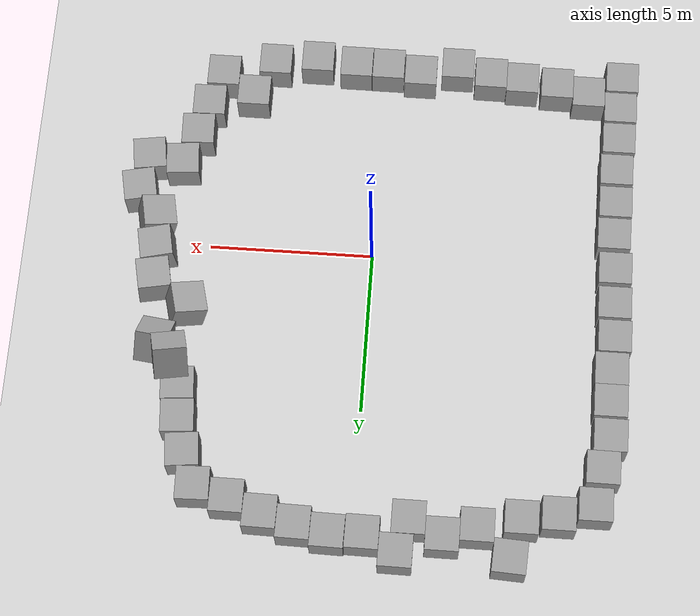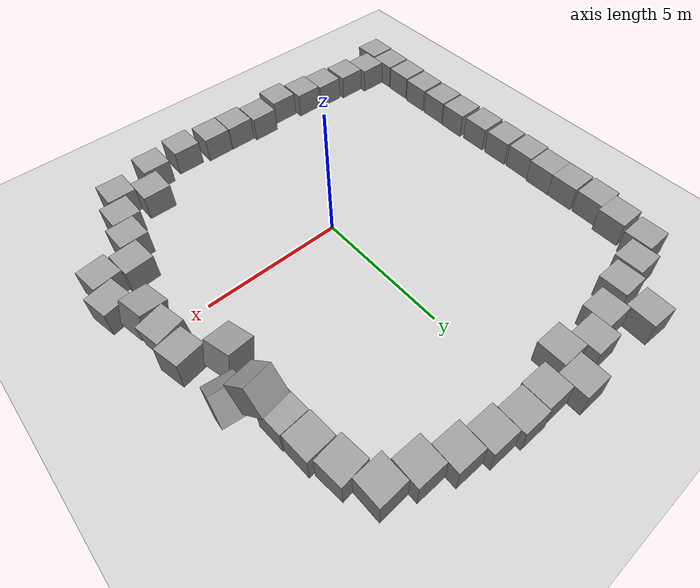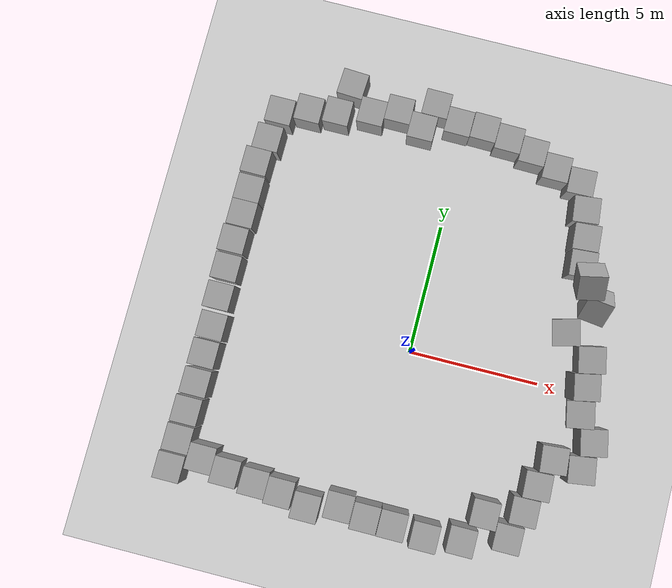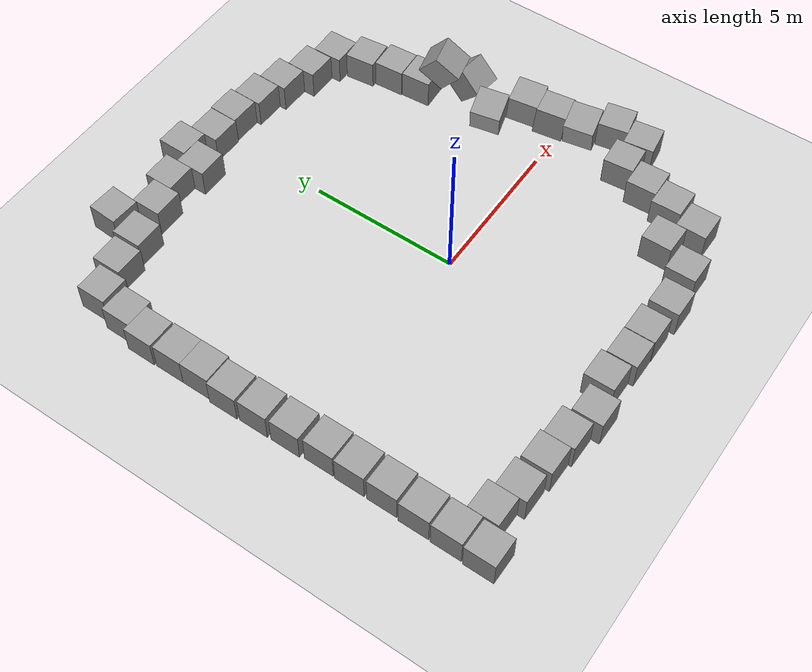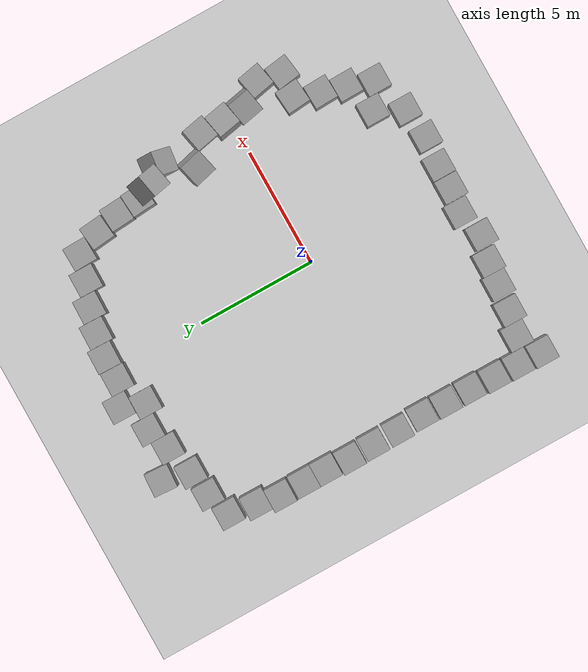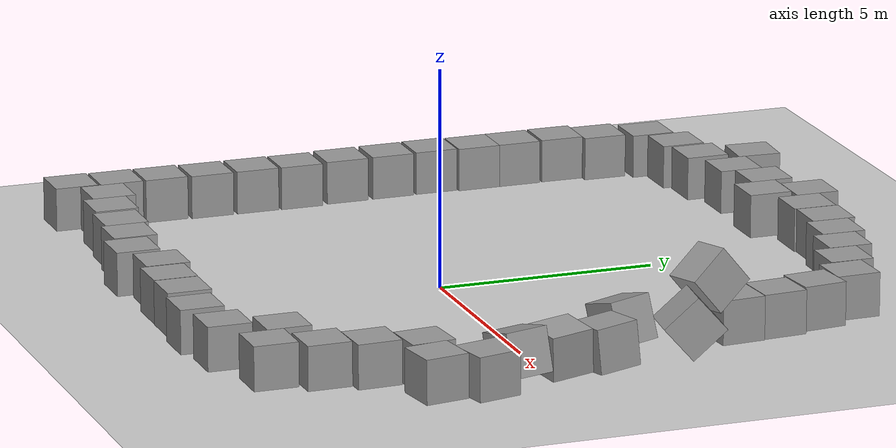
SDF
<sdf version="1.6">
 <world name="default">
  <model name="ground_plane">
   <static>1</static>
   <link name="link">
    <collision name="collision">
     <geometry><plane><normal>0 0 1</normal><size>100 100</size></plane></geometry>
     <surface><friction><ode><mu>100</mu><mu2>50</mu2></ode></friction></surface>
    </collision>
    <visual name="visual">
     <cast_shadows>0</cast_shadows>
     <geometry><plane><normal>0 0 1</normal><size>100 100</size></plane></geometry>
     <material>
      <script><uri>file://media/materials/scripts/gazebo.material</uri><name>Gazebo/Grey</name></script>
     </material>
    </visual>
   </link>
  </model>
  <light name="sun" type="directional">
   <pose>0 0 10 0 -0 0</pose>
   <diffuse>0.8 0.8 0.8 1</diffuse>
   <specular>0.1 0.1 0.1 1</specular>
   <attenuation>
    <range>1000</range>
    <constant>0.9</constant>
    <linear>0.01</linear>
    <quadratic>0.001</quadratic>
   </attenuation>
   <direction>-0.5 0.5 -1</direction>
  </light>
  <gravity>0 0 -9.8</gravity>
  <magnetic_field>6e-06 2.3e-05 -4.2e-05</magnetic_field>
  <atmosphere type="adiabatic"/>
  <physics name="default_physics" default="0" type="ode">
   <max_step_size>0.001</max_step_size>
   <real_time_factor>1</real_time_factor>
   <real_time_update_rate>1000</real_time_update_rate>
  </physics>
  <scene><ambient>0.4 0.4 0.4 1</ambient><background>0.7 0.7 0.7 1</background><shadows>1</shadows></scene>
  <spherical_coordinates>
   <surface_model>EARTH_WGS84</surface_model>
   <latitude_deg>0</latitude_deg>
   <longitude_deg>0</longitude_deg>
   <elevation>0</elevation>
   <heading_deg>0</heading_deg>
  </spherical_coordinates>
  <model name="unit_box_0">
   <pose>-7.47389 -5.17972 0.499995 0 1e-05 0</pose>
   <link name="link">
    <inertial>
     <mass>1</mass>
     <inertia>
      <ixx>0.166667</ixx>
      <ixy>0</ixy>
      <ixz>0</ixz>
      <iyy>0.166667</iyy>
      <iyz>0</iyz>
      <izz>0.166667</izz>
     </inertia>
    </inertial>
    <collision name="collision"><geometry><box><size>1 1 1</size></box></geometry></collision>
    <visual name="visual">
     <geometry><box><size>1 1 1</size></box></geometry>
     <material>
      <script><name>Gazebo/Grey</name><uri>file://media/materials/scripts/gazebo.material</uri></script>
     </material>
    </visual>
   </link>
  </model>
  <model name="unit_box_0_clone">
   <pose>-7.45343 -4.11871 0.499995 -1e-05 0 0</pose>
   <link name="link">
    <inertial>
     <mass>1</mass>
     <inertia>
      <ixx>0.166667</ixx>
      <ixy>0</ixy>
      <ixz>0</ixz>
      <iyy>0.166667</iyy>
      <iyz>0</iyz>
      <izz>0.166667</izz>
     </inertia>
    </inertial>
    <collision name="collision"><geometry><box><size>1 1 1</size></box></geometry></collision>
    <visual name="visual">
     <geometry><box><size>1 1 1</size></box></geometry>
     <material>
      <script><name>Gazebo/Grey</name><uri>file://media/materials/scripts/gazebo.material</uri></script>
     </material>
    </visual>
   </link>
  </model>
  <model name="unit_box_0_clone_0">
   <pose>-7.40433 -3.03981 0.499995 0 1e-05 0</pose>
   <link name="link">
    <inertial>
     <mass>1</mass>
     <inertia>
      <ixx>0.166667</ixx>
      <ixy>0</ixy>
      <ixz>0</ixz>
      <iyy>0.166667</iyy>
      <iyz>0</iyz>
      <izz>0.166667</izz>
     </inertia>
    </inertial>
    <collision name="collision"><geometry><box><size>1 1 1</size></box></geometry></collision>
    <visual name="visual">
     <geometry><box><size>1 1 1</size></box></geometry>
     <material>
      <script><name>Gazebo/Grey</name><uri>file://media/materials/scripts/gazebo.material</uri></script>
     </material>
    </visual>
   </link>
  </model>
  <model name="unit_box_0_clone_1">
   <pose>-7.40096 -1.94934 0.499995 -1e-05 0 0</pose>
   <link name="link">
    <inertial>
     <mass>1</mass>
     <inertia>
      <ixx>0.166667</ixx>
      <ixy>0</ixy>
      <ixz>0</ixz>
      <iyy>0.166667</iyy>
      <iyz>0</iyz>
      <izz>0.166667</izz>
     </inertia>
    </inertial>
    <collision name="collision"><geometry><box><size>1 1 1</size></box></geometry></collision>
    <visual name="visual">
     <geometry><box><size>1 1 1</size></box></geometry>
     <material>
      <script><name>Gazebo/Grey</name><uri>file://media/materials/scripts/gazebo.material</uri></script>
     </material>
    </visual>
   </link>
  </model>
  <model name="unit_box_0_clone_2">
   <pose>-7.38025 -0.888456 0.499995 0 1e-05 0</pose>
   <link name="link">
    <inertial>
     <mass>1</mass>
     <inertia>
      <ixx>0.166667</ixx>
      <ixy>0</ixy>
      <ixz>0</ixz>
      <iyy>0.166667</iyy>
      <iyz>0</iyz>
      <izz>0.166667</izz>
     </inertia>
    </inertial>
    <collision name="collision"><geometry><box><size>1 1 1</size></box></geometry></collision>
    <visual name="visual">
     <geometry><box><size>1 1 1</size></box></geometry>
     <material>
      <script><name>Gazebo/Grey</name><uri>file://media/materials/scripts/gazebo.material</uri></script>
     </material>
    </visual>
   </link>
  </model>
  <model name="unit_box_0_clone_3">
   <pose>-7.43985 0.241353 0.499995 -1e-05 0 0</pose>
   <link name="link">
    <inertial>
     <mass>1</mass>
     <inertia>
      <ixx>0.166667</ixx>
      <ixy>0</ixy>
      <ixz>0</ixz>
      <iyy>0.166667</iyy>
      <iyz>0</iyz>
      <izz>0.166667</izz>
     </inertia>
    </inertial>
    <collision name="collision"><geometry><box><size>1 1 1</size></box></geometry></collision>
    <visual name="visual">
     <geometry><box><size>1 1 1</size></box></geometry>
     <material>
      <script><name>Gazebo/Grey</name><uri>file://media/materials/scripts/gazebo.material</uri></script>
     </material>
    </visual>
   </link>
  </model>
  <model name="unit_box_0_clone_4">
   <pose>-7.4536 1.35908 0.5 0 -0 0</pose>
   <link name="link">
    <inertial>
     <mass>1</mass>
     <inertia>
      <ixx>0.166667</ixx>
      <ixy>0</ixy>
      <ixz>0</ixz>
      <iyy>0.166667</iyy>
      <iyz>0</iyz>
      <izz>0.166667</izz>
     </inertia>
    </inertial>
    <collision name="collision"><geometry><box><size>1 1 1</size></box></geometry></collision>
    <visual name="visual">
     <geometry><box><size>1 1 1</size></box></geometry>
     <material>
      <script><name>Gazebo/Grey</name><uri>file://media/materials/scripts/gazebo.material</uri></script>
     </material>
    </visual>
   </link>
  </model>
  <model name="unit_box_0_clone_5">
   <pose>-7.47888 2.43163 0.5 0 -0 0</pose>
   <link name="link">
    <inertial>
     <mass>1</mass>
     <inertia>
      <ixx>0.166667</ixx>
      <ixy>0</ixy>
      <ixz>0</ixz>
      <iyy>0.166667</iyy>
      <iyz>0</iyz>
      <izz>0.166667</izz>
     </inertia>
    </inertial>
    <collision name="collision"><geometry><box><size>1 1 1</size></box></geometry></collision>
    <visual name="visual">
     <geometry><box><size>1 1 1</size></box></geometry>
     <material>
      <script><name>Gazebo/Grey</name><uri>file://media/materials/scripts/gazebo.material</uri></script>
     </material>
    </visual>
   </link>
  </model>
  <model name="unit_box_0_clone_6">
   <pose>-7.41253 3.46648 0.5 0 -0 2.4e-05</pose>
   <link name="link">
    <inertial>
     <mass>1</mass>
     <inertia>
      <ixx>0.166667</ixx>
      <ixy>0</ixy>
      <ixz>0</ixz>
      <iyy>0.166667</iyy>
      <iyz>0</iyz>
      <izz>0.166667</izz>
     </inertia>
    </inertial>
    <collision name="collision"><geometry><box><size>1 1 1</size></box></geometry></collision>
    <visual name="visual">
     <geometry><box><size>1 1 1</size></box></geometry>
     <material>
      <script><name>Gazebo/Grey</name><uri>file://media/materials/scripts/gazebo.material</uri></script>
     </material>
    </visual>
   </link>
  </model>
  <model name="unit_box_0_clone_7">
   <pose>-7.41454 4.46649 0.499995 -1e-05 -0 2.3e-05</pose>
   <link name="link">
    <inertial>
     <mass>1</mass>
     <inertia>
      <ixx>0.166667</ixx>
      <ixy>0</ixy>
      <ixz>0</ixz>
      <iyy>0.166667</iyy>
      <iyz>0</iyz>
      <izz>0.166667</izz>
     </inertia>
    </inertial>
    <collision name="collision"><geometry><box><size>1 1 1</size></box></geometry></collision>
    <visual name="visual">
     <geometry><box><size>1 1 1</size></box></geometry>
     <material>
      <script><name>Gazebo/Grey</name><uri>file://media/materials/scripts/gazebo.material</uri></script>
     </material>
    </visual>
   </link>
  </model>
  <model name="unit_box_0_clone_8">
   <pose>-7.43231 5.5327 0.5 0 0 -0.008708</pose>
   <link name="link">
    <inertial>
     <mass>1</mass>
     <inertia>
      <ixx>0.166667</ixx>
      <ixy>0</ixy>
      <ixz>0</ixz>
      <iyy>0.166667</iyy>
      <iyz>0</iyz>
      <izz>0.166667</izz>
     </inertia>
    </inertial>
    <collision name="collision"><geometry><box><size>1 1 1</size></box></geometry></collision>
    <visual name="visual">
     <geometry><box><size>1 1 1</size></box></geometry>
     <material>
      <script><name>Gazebo/Grey</name><uri>file://media/materials/scripts/gazebo.material</uri></script>
     </material>
    </visual>
   </link>
  </model>
  <model name="unit_box_0_clone_9">
   <pose>-7.24379 6.53113 0.5 0 0 -0.008701</pose>
   <link name="link">
    <inertial>
     <mass>1</mass>
     <inertia>
      <ixx>0.166667</ixx>
      <ixy>0</ixy>
      <ixz>0</ixz>
      <iyy>0.166667</iyy>
      <iyz>0</iyz>
      <izz>0.166667</izz>
     </inertia>
    </inertial>
    <collision name="collision"><geometry><box><size>1 1 1</size></box></geometry></collision>
    <visual name="visual">
     <geometry><box><size>1 1 1</size></box></geometry>
     <material>
      <script><name>Gazebo/Grey</name><uri>file://media/materials/scripts/gazebo.material</uri></script>
     </material>
    </visual>
   </link>
  </model>
  <model name="unit_box_0_clone_10">
   <pose>-7.05641 7.65805 0.5 0 -0 0</pose>
   <link name="link">
    <inertial>
     <mass>1</mass>
     <inertia>
      <ixx>0.166667</ixx>
      <ixy>0</ixy>
      <ixz>0</ixz>
      <iyy>0.166667</iyy>
      <iyz>0</iyz>
      <izz>0.166667</izz>
     </inertia>
    </inertial>
    <collision name="collision"><geometry><box><size>1 1 1</size></box></geometry></collision>
    <visual name="visual">
     <geometry><box><size>1 1 1</size></box></geometry>
     <material>
      <script><name>Gazebo/Grey</name><uri>file://media/materials/scripts/gazebo.material</uri></script>
     </material>
    </visual>
   </link>
  </model>
  <model name="unit_box_0_clone_11">
   <pose>-6 8 0.5 0 -0 0</pose>
   <link name="link">
    <inertial>
     <mass>1</mass>
     <inertia>
      <ixx>0.166667</ixx>
      <ixy>0</ixy>
      <ixz>0</ixz>
      <iyy>0.166667</iyy>
      <iyz>0</iyz>
      <izz>0.166667</izz>
     </inertia>
    </inertial>
    <collision name="collision"><geometry><box><size>1 1 1</size></box></geometry></collision>
    <visual name="visual">
     <geometry><box><size>1 1 1</size></box></geometry>
     <material>
      <script><name>Gazebo/Grey</name><uri>file://media/materials/scripts/gazebo.material</uri></script>
     </material>
    </visual>
   </link>
  </model>
  <model name="unit_box_0_clone_12">
   <pose>-4.91824 8.1706 0.5 0 -0 0</pose>
   <link name="link">
    <inertial>
     <mass>1</mass>
     <inertia>
      <ixx>0.166667</ixx>
      <ixy>0</ixy>
      <ixz>0</ixz>
      <iyy>0.166667</iyy>
      <iyz>0</iyz>
      <izz>0.166667</izz>
     </inertia>
    </inertial>
    <collision name="collision"><geometry><box><size>1 1 1</size></box></geometry></collision>
    <visual name="visual">
     <geometry><box><size>1 1 1</size></box></geometry>
     <material>
      <script><name>Gazebo/Grey</name><uri>file://media/materials/scripts/gazebo.material</uri></script>
     </material>
    </visual>
   </link>
  </model>
  <model name="unit_box_0_clone_13">
   <pose>-3.64528 8.48185 0.49999 0 0 -0.003197</pose>
   <link name="link">
    <inertial>
     <mass>1</mass>
     <inertia>
      <ixx>0.166667</ixx>
      <ixy>0</ixy>
      <ixz>0</ixz>
      <iyy>0.166667</iyy>
      <iyz>0</iyz>
      <izz>0.166667</izz>
     </inertia>
    </inertial>
    <collision name="collision"><geometry><box><size>1 1 1</size></box></geometry></collision>
    <visual name="visual">
     <geometry><box><size>1 1 1</size></box></geometry>
     <material>
      <script><name>Gazebo/Grey</name><uri>file://media/materials/scripts/gazebo.material</uri></script>
     </material>
    </visual>
   </link>
  </model>
  <model name="unit_box_0_clone_14">
   <pose>-2.64417 8.82151 0.5 0 0 -0.003211</pose>
   <link name="link">
    <inertial>
     <mass>1</mass>
     <inertia>
      <ixx>0.166667</ixx>
      <ixy>0</ixy>
      <ixz>0</ixz>
      <iyy>0.166667</iyy>
      <iyz>0</iyz>
      <izz>0.166667</izz>
     </inertia>
    </inertial>
    <collision name="collision"><geometry><box><size>1 1 1</size></box></geometry></collision>
    <visual name="visual">
     <geometry><box><size>1 1 1</size></box></geometry>
     <material>
      <script><name>Gazebo/Grey</name><uri>file://media/materials/scripts/gazebo.material</uri></script>
     </material>
    </visual>
   </link>
  </model>
  <model name="unit_box_0_clone_15">
   <pose>-4.62326 9.35824 0.5 0 0 -0.056568</pose>
   <link name="link">
    <inertial>
     <mass>1</mass>
     <inertia>
      <ixx>0.166667</ixx>
      <ixy>0</ixy>
      <ixz>0</ixz>
      <iyy>0.166667</iyy>
      <iyz>0</iyz>
      <izz>0.166667</izz>
     </inertia>
    </inertial>
    <collision name="collision"><geometry><box><size>1 1 1</size></box></geometry></collision>
    <visual name="visual">
     <geometry><box><size>1 1 1</size></box></geometry>
     <material>
      <script><name>Gazebo/Grey</name><uri>file://media/materials/scripts/gazebo.material</uri></script>
     </material>
    </visual>
   </link>
  </model>
  <model name="unit_box_0_clone_16">
   <pose>-1.64552 8.38442 0.499995 1e-05 0 -0.003272</pose>
   <link name="link">
    <inertial>
     <mass>1</mass>
     <inertia>
      <ixx>0.166667</ixx>
      <ixy>0</ixy>
      <ixz>0</ixz>
      <iyy>0.166667</iyy>
      <iyz>0</iyz>
      <izz>0.166667</izz>
     </inertia>
    </inertial>
    <collision name="collision"><geometry><box><size>1 1 1</size></box></geometry></collision>
    <visual name="visual">
     <geometry><box><size>1 1 1</size></box></geometry>
     <material>
      <script><name>Gazebo/Grey</name><uri>file://media/materials/scripts/gazebo.material</uri></script>
     </material>
    </visual>
   </link>
  </model>
  <model name="unit_box_1">
   <pose>-7.5127 -6.23461 0.5 0 -0 0</pose>
   <link name="link">
    <inertial>
     <mass>1</mass>
     <inertia>
      <ixx>0.166667</ixx>
      <ixy>0</ixy>
      <ixz>0</ixz>
      <iyy>0.166667</iyy>
      <iyz>0</iyz>
      <izz>0.166667</izz>
     </inertia>
    </inertial>
    <collision name="collision"><geometry><box><size>1 1 1</size></box></geometry></collision>
    <visual name="visual">
     <geometry><box><size>1 1 1</size></box></geometry>
     <material>
      <script><name>Gazebo/Grey</name><uri>file://media/materials/scripts/gazebo.material</uri></script>
     </material>
    </visual>
   </link>
  </model>
  <model name="unit_box_0_clone_17">
   <pose>-6.47221 -5.66918 0.5 0 0 -0.005914</pose>
   <link name="link">
    <inertial>
     <mass>1</mass>
     <inertia>
      <ixx>0.166667</ixx>
      <ixy>0</ixy>
      <ixz>0</ixz>
      <iyy>0.166667</iyy>
      <iyz>0</iyz>
      <izz>0.166667</izz>
     </inertia>
    </inertial>
    <collision name="collision"><geometry><box><size>1 1 1</size></box></geometry></collision>
    <visual name="visual">
     <geometry><box><size>1 1 1</size></box></geometry>
     <material>
      <script><name>Gazebo/Grey</name><uri>file://media/materials/scripts/gazebo.material</uri></script>
     </material>
    </visual>
   </link>
  </model>
  <model name="unit_box_0_clone_18">
   <pose>-5.47362 -5.91259 0.499995 0 -1e-05 -0.005921</pose>
   <link name="link">
    <inertial>
     <mass>1</mass>
     <inertia>
      <ixx>0.166667</ixx>
      <ixy>0</ixy>
      <ixz>0</ixz>
      <iyy>0.166667</iyy>
      <iyz>0</iyz>
      <izz>0.166667</izz>
     </inertia>
    </inertial>
    <collision name="collision"><geometry><box><size>1 1 1</size></box></geometry></collision>
    <visual name="visual">
     <geometry><box><size>1 1 1</size></box></geometry>
     <material>
      <script><name>Gazebo/Grey</name><uri>file://media/materials/scripts/gazebo.material</uri></script>
     </material>
    </visual>
   </link>
  </model>
  <model name="unit_box_0_clone_19">
   <pose>-4.3752 -6.02486 0.5 0 0 -0.005695</pose>
   <link name="link">
    <inertial>
     <mass>1</mass>
     <inertia>
      <ixx>0.166667</ixx>
      <ixy>0</ixy>
      <ixz>0</ixz>
      <iyy>0.166667</iyy>
      <iyz>0</iyz>
      <izz>0.166667</izz>
     </inertia>
    </inertial>
    <collision name="collision"><geometry><box><size>1 1 1</size></box></geometry></collision>
    <visual name="visual">
     <geometry><box><size>1 1 1</size></box></geometry>
     <material>
      <script><name>Gazebo/Grey</name><uri>file://media/materials/scripts/gazebo.material</uri></script>
     </material>
    </visual>
   </link>
  </model>
  <model name="unit_box_0_clone_20">
   <pose>-3.3758 -6.13604 0.499995 -0 1e-05 -0.005693</pose>
   <link name="link">
    <inertial>
     <mass>1</mass>
     <inertia>
      <ixx>0.166667</ixx>
      <ixy>0</ixy>
      <ixz>0</ixz>
      <iyy>0.166667</iyy>
      <iyz>0</iyz>
      <izz>0.166667</izz>
     </inertia>
    </inertial>
    <collision name="collision"><geometry><box><size>1 1 1</size></box></geometry></collision>
    <visual name="visual">
     <geometry><box><size>1 1 1</size></box></geometry>
     <material>
      <script><name>Gazebo/Grey</name><uri>file://media/materials/scripts/gazebo.material</uri></script>
     </material>
    </visual>
   </link>
  </model>
  <model name="unit_box_0_clone_21">
   <pose>-2.32032 -6.40419 0.499995 0 -1e-05 0</pose>
   <link name="link">
    <inertial>
     <mass>1</mass>
     <inertia>
      <ixx>0.166667</ixx>
      <ixy>0</ixy>
      <ixz>0</ixz>
      <iyy>0.166667</iyy>
      <iyz>0</iyz>
      <izz>0.166667</izz>
     </inertia>
    </inertial>
    <collision name="collision"><geometry><box><size>1 1 1</size></box></geometry></collision>
    <visual name="visual">
     <geometry><box><size>1 1 1</size></box></geometry>
     <material>
      <script><name>Gazebo/Grey</name><uri>file://media/materials/scripts/gazebo.material</uri></script>
     </material>
    </visual>
   </link>
  </model>
  <model name="unit_box_0_clone_22">
   <pose>-1.15156 -6.08828 0.499995 0 -1e-05 0</pose>
   <link name="link">
    <inertial>
     <mass>1</mass>
     <inertia>
      <ixx>0.166667</ixx>
      <ixy>0</ixy>
      <ixz>0</ixz>
      <iyy>0.166667</iyy>
      <iyz>0</iyz>
      <izz>0.166667</izz>
     </inertia>
    </inertial>
    <collision name="collision"><geometry><box><size>1 1 1</size></box></geometry></collision>
    <visual name="visual">
     <geometry><box><size>1 1 1</size></box></geometry>
     <material>
      <script><name>Gazebo/Grey</name><uri>file://media/materials/scripts/gazebo.material</uri></script>
     </material>
    </visual>
   </link>
  </model>
  <model name="unit_box_0_clone_23">
   <pose>-0.124801 -6.24521 0.499995 0 -1e-05 0</pose>
   <link name="link">
    <inertial>
     <mass>1</mass>
     <inertia>
      <ixx>0.166667</ixx>
      <ixy>0</ixy>
      <ixz>0</ixz>
      <iyy>0.166667</iyy>
      <iyz>0</iyz>
      <izz>0.166667</izz>
     </inertia>
    </inertial>
    <collision name="collision"><geometry><box><size>1 1 1</size></box></geometry></collision>
    <visual name="visual">
     <geometry><box><size>1 1 1</size></box></geometry>
     <material>
      <script><name>Gazebo/Grey</name><uri>file://media/materials/scripts/gazebo.material</uri></script>
     </material>
    </visual>
   </link>
  </model>
  <model name="unit_box_0_clone_24">
   <pose>0.890703 -6.25408 0.499995 0 -1e-05 0</pose>
   <link name="link">
    <inertial>
     <mass>1</mass>
     <inertia>
      <ixx>0.166667</ixx>
      <ixy>0</ixy>
      <ixz>0</ixz>
      <iyy>0.166667</iyy>
      <iyz>0</iyz>
      <izz>0.166667</izz>
     </inertia>
    </inertial>
    <collision name="collision"><geometry><box><size>1 1 1</size></box></geometry></collision>
    <visual name="visual">
     <geometry><box><size>1 1 1</size></box></geometry>
     <material>
      <script><name>Gazebo/Grey</name><uri>file://media/materials/scripts/gazebo.material</uri></script>
     </material>
    </visual>
   </link>
  </model>
  <model name="unit_box_0_clone_25">
   <pose>2.12291 -6.3647 0.499995 0 -1e-05 0</pose>
   <link name="link">
    <inertial>
     <mass>1</mass>
     <inertia>
      <ixx>0.166667</ixx>
      <ixy>0</ixy>
      <ixz>0</ixz>
      <iyy>0.166667</iyy>
      <iyz>0</iyz>
      <izz>0.166667</izz>
     </inertia>
    </inertial>
    <collision name="collision"><geometry><box><size>1 1 1</size></box></geometry></collision>
    <visual name="visual">
     <geometry><box><size>1 1 1</size></box></geometry>
     <material>
      <script><name>Gazebo/Grey</name><uri>file://media/materials/scripts/gazebo.material</uri></script>
     </material>
    </visual>
   </link>
  </model>
  <model name="unit_box_0_clone_26">
   <pose>3.45158 -6.18515 0.499995 0 -1e-05 0</pose>
   <link name="link">
    <inertial>
     <mass>1</mass>
     <inertia>
      <ixx>0.166667</ixx>
      <ixy>0</ixy>
      <ixz>0</ixz>
      <iyy>0.166667</iyy>
      <iyz>0</iyz>
      <izz>0.166667</izz>
     </inertia>
    </inertial>
    <collision name="collision"><geometry><box><size>1 1 1</size></box></geometry></collision>
    <visual name="visual">
     <geometry><box><size>1 1 1</size></box></geometry>
     <material>
      <script><name>Gazebo/Grey</name><uri>file://media/materials/scripts/gazebo.material</uri></script>
     </material>
    </visual>
   </link>
  </model>
  <model name="unit_box_0_clone_27">
   <pose>4.04988 -5.04784 0.499995 0 -1e-05 0</pose>
   <link name="link">
    <inertial>
     <mass>1</mass>
     <inertia>
      <ixx>0.166667</ixx>
      <ixy>0</ixy>
      <ixz>0</ixz>
      <iyy>0.166667</iyy>
      <iyz>0</iyz>
      <izz>0.166667</izz>
     </inertia>
    </inertial>
    <collision name="collision"><geometry><box><size>1 1 1</size></box></geometry></collision>
    <visual name="visual">
     <geometry><box><size>1 1 1</size></box></geometry>
     <material>
      <script><name>Gazebo/Grey</name><uri>file://media/materials/scripts/gazebo.material</uri></script>
     </material>
    </visual>
   </link>
  </model>
  <model name="unit_box_0_clone_28">
   <pose>5.41638 -4.61864 0.5 0 -0 0.01627</pose>
   <link name="link">
    <inertial>
     <mass>1</mass>
     <inertia>
      <ixx>0.166667</ixx>
      <ixy>0</ixy>
      <ixz>0</ixz>
      <iyy>0.166667</iyy>
      <iyz>0</iyz>
      <izz>0.166667</izz>
     </inertia>
    </inertial>
    <collision name="collision"><geometry><box><size>1 1 1</size></box></geometry></collision>
    <visual name="visual">
     <geometry><box><size>1 1 1</size></box></geometry>
     <material>
      <script><name>Gazebo/Grey</name><uri>file://media/materials/scripts/gazebo.material</uri></script>
     </material>
    </visual>
   </link>
  </model>
  <model name="unit_box_0_clone_29">
   <pose>5.67605 -3.5988 0.5 0 -0 0.036611</pose>
   <link name="link">
    <inertial>
     <mass>1</mass>
     <inertia>
      <ixx>0.166667</ixx>
      <ixy>0</ixy>
      <ixz>0</ixz>
      <iyy>0.166667</iyy>
      <iyz>0</iyz>
      <izz>0.166667</izz>
     </inertia>
    </inertial>
    <collision name="collision"><geometry><box><size>1 1 1</size></box></geometry></collision>
    <visual name="visual">
     <geometry><box><size>1 1 1</size></box></geometry>
     <material>
      <script><name>Gazebo/Grey</name><uri>file://media/materials/scripts/gazebo.material</uri></script>
     </material>
    </visual>
   </link>
  </model>
  <model name="unit_box_0_clone_30">
   <pose>5.0552 -5.68445 0.499995 0 -1e-05 0</pose>
   <link name="link">
    <inertial>
     <mass>1</mass>
     <inertia>
      <ixx>0.166667</ixx>
      <ixy>0</ixy>
      <ixz>0</ixz>
      <iyy>0.166667</iyy>
      <iyz>0</iyz>
      <izz>0.166667</izz>
     </inertia>
    </inertial>
    <collision name="collision"><geometry><box><size>1 1 1</size></box></geometry></collision>
    <visual name="visual">
     <geometry><box><size>1 1 1</size></box></geometry>
     <material>
      <script><name>Gazebo/Grey</name><uri>file://media/materials/scripts/gazebo.material</uri></script>
     </material>
    </visual>
   </link>
  </model>
  <model name="unit_box_0_clone_31">
   <pose>6.05477 -2.54721 0.5 0 -0 0.085634</pose>
   <link name="link">
    <inertial>
     <mass>1</mass>
     <inertia>
      <ixx>0.166667</ixx>
      <ixy>0</ixy>
      <ixz>0</ixz>
      <iyy>0.166667</iyy>
      <iyz>0</iyz>
      <izz>0.166667</izz>
     </inertia>
    </inertial>
    <collision name="collision"><geometry><box><size>1 1 1</size></box></geometry></collision>
    <visual name="visual">
     <geometry><box><size>1 1 1</size></box></geometry>
     <material>
      <script><name>Gazebo/Grey</name><uri>file://media/materials/scripts/gazebo.material</uri></script>
     </material>
    </visual>
   </link>
  </model>
  <model name="unit_box_0_clone_32">
   <pose>7.09434 -2.64953 0.503805 0.007603 3.5e-05 0.140748</pose>
   <link name="link">
    <inertial>
     <mass>1</mass>
     <inertia>
      <ixx>0.166667</ixx>
      <ixy>0</ixy>
      <ixz>0</ixz>
      <iyy>0.166667</iyy>
      <iyz>0</iyz>
      <izz>0.166667</izz>
     </inertia>
    </inertial>
    <collision name="collision"><geometry><box><size>1 1 1</size></box></geometry></collision>
    <visual name="visual">
     <geometry><box><size>1 1 1</size></box></geometry>
     <material>
      <script><name>Gazebo/Grey</name><uri>file://media/materials/scripts/gazebo.material</uri></script>
     </material>
    </visual>
   </link>
  </model>
  <model name="unit_box_0_clone_33">
   <pose>7.29788 -1.57981 0.506059 0.012198 -5e-06 0.199001</pose>
   <link name="link">
    <inertial>
     <mass>1</mass>
     <inertia>
      <ixx>0.166667</ixx>
      <ixy>0</ixy>
      <ixz>0</ixz>
      <iyy>0.166667</iyy>
      <iyz>0</iyz>
      <izz>0.166667</izz>
     </inertia>
    </inertial>
    <collision name="collision"><geometry><box><size>1 1 1</size></box></geometry></collision>
    <visual name="visual">
     <geometry><box><size>1 1 1</size></box></geometry>
     <material>
      <script><name>Gazebo/Grey</name><uri>file://media/materials/scripts/gazebo.material</uri></script>
     </material>
    </visual>
   </link>
  </model>
  <model name="unit_box_0_clone_34">
   <pose>6.67841 -0.679216 0.618239 0.029302 -0.239196 0.192133</pose>
   <link name="link">
    <inertial>
     <mass>1</mass>
     <inertia>
      <ixx>0.166667</ixx>
      <ixy>0</ixy>
      <ixz>0</ixz>
      <iyy>0.166667</iyy>
      <iyz>0</iyz>
      <izz>0.166667</izz>
     </inertia>
    </inertial>
    <collision name="collision"><geometry><box><size>1 1 1</size></box></geometry></collision>
    <visual name="visual">
     <geometry><box><size>1 1 1</size></box></geometry>
     <material>
      <script><name>Gazebo/Grey</name><uri>file://media/materials/scripts/gazebo.material</uri></script>
     </material>
    </visual>
   </link>
  </model>
  <model name="unit_box_0_clone_35">
   <pose>6.57532 1.37275 0.565105 0.072894 -0.062142 0.205744</pose>
   <link name="link">
    <inertial>
     <mass>1</mass>
     <inertia>
      <ixx>0.166667</ixx>
      <ixy>0</ixy>
      <ixz>0</ixz>
      <iyy>0.166667</iyy>
      <iyz>0</iyz>
      <izz>0.166667</izz>
     </inertia>
    </inertial>
    <collision name="collision"><geometry><box><size>1 1 1</size></box></geometry></collision>
    <visual name="visual">
     <geometry><box><size>1 1 1</size></box></geometry>
     <material>
      <script><name>Gazebo/Grey</name><uri>file://media/materials/scripts/gazebo.material</uri></script>
     </material>
    </visual>
   </link>
  </model>
  <model name="unit_box_0_clone_36">
   <pose>6.56599 0.336665 0.561988 0.06109 0.067232 0.20096</pose>
   <link name="link">
    <inertial>
     <mass>1</mass>
     <inertia>
      <ixx>0.166667</ixx>
      <ixy>0</ixy>
      <ixz>0</ixz>
      <iyy>0.166667</iyy>
      <iyz>0</iyz>
      <izz>0.166667</izz>
     </inertia>
    </inertial>
    <collision name="collision"><geometry><box><size>1 1 1</size></box></geometry></collision>
    <visual name="visual">
     <geometry><box><size>1 1 1</size></box></geometry>
     <material>
      <script><name>Gazebo/Grey</name><uri>file://media/materials/scripts/gazebo.material</uri></script>
     </material>
    </visual>
   </link>
  </model>
  <model name="unit_box_0_clone_37">
   <pose>5.48989 2.14264 0.648348 0.072686 -0.268158 0.235144</pose>
   <link name="link">
    <inertial>
     <mass>1</mass>
     <inertia>
      <ixx>0.166667</ixx>
      <ixy>0</ixy>
      <ixz>0</ixz>
      <iyy>0.166667</iyy>
      <iyz>0</iyz>
      <izz>0.166667</izz>
     </inertia>
    </inertial>
    <collision name="collision"><geometry><box><size>1 1 1</size></box></geometry></collision>
    <visual name="visual">
     <geometry><box><size>1 1 1</size></box></geometry>
     <material>
      <script><name>Gazebo/Grey</name><uri>file://media/materials/scripts/gazebo.material</uri></script>
     </material>
    </visual>
   </link>
  </model>
  <model name="unit_box_0_clone_38">
   <pose>6.32024 3.39899 0.705577 0.719655 5e-06 -0.123381</pose>
   <link name="link">
    <inertial>
     <mass>1</mass>
     <inertia>
      <ixx>0.166667</ixx>
      <ixy>0</ixy>
      <ixz>0</ixz>
      <iyy>0.166667</iyy>
      <iyz>0</iyz>
      <izz>0.166667</izz>
     </inertia>
    </inertial>
    <collision name="collision"><geometry><box><size>1 1 1</size></box></geometry></collision>
    <visual name="visual">
     <geometry><box><size>1 1 1</size></box></geometry>
     <material>
      <script><name>Gazebo/Grey</name><uri>file://media/materials/scripts/gazebo.material</uri></script>
     </material>
    </visual>
   </link>
  </model>
  <model name="unit_box_0_clone_39">
   <pose>5.72206 4.07934 1.4883 -0.887215 -0.100783 0.193481</pose>
   <link name="link">
    <inertial>
     <mass>1</mass>
     <inertia>
      <ixx>0.166667</ixx>
      <ixy>0</ixy>
      <ixz>0</ixz>
      <iyy>0.166667</iyy>
      <iyz>0</iyz>
      <izz>0.166667</izz>
     </inertia>
    </inertial>
    <collision name="collision"><geometry><box><size>1 1 1</size></box></geometry></collision>
    <visual name="visual">
     <geometry><box><size>1 1 1</size></box></geometry>
     <material>
      <script><name>Gazebo/Grey</name><uri>file://media/materials/scripts/gazebo.material</uri></script>
     </material>
    </visual>
   </link>
  </model>
  <model name="unit_box_0_clone_40">
   <pose>5.47431 4.7574 0.500029 -4.2e-05 -1.6e-05 0.070649</pose>
   <link name="link">
    <inertial>
     <mass>1</mass>
     <inertia>
      <ixx>0.166667</ixx>
      <ixy>0</ixy>
      <ixz>0</ixz>
      <iyy>0.166667</iyy>
      <iyz>0</iyz>
      <izz>0.166667</izz>
     </inertia>
    </inertial>
    <collision name="collision"><geometry><box><size>1 1 1</size></box></geometry></collision>
    <visual name="visual">
     <geometry><box><size>1 1 1</size></box></geometry>
     <material>
      <script><name>Gazebo/Grey</name><uri>file://media/materials/scripts/gazebo.material</uri></script>
     </material>
    </visual>
   </link>
  </model>
  <model name="unit_box_0_clone_41">
   <pose>5.37348 5.76852 0.499995 0 1e-05 0.068608</pose>
   <link name="link">
    <inertial>
     <mass>1</mass>
     <inertia>
      <ixx>0.166667</ixx>
      <ixy>0</ixy>
      <ixz>0</ixz>
      <iyy>0.166667</iyy>
      <iyz>0</iyz>
      <izz>0.166667</izz>
     </inertia>
    </inertial>
    <collision name="collision"><geometry><box><size>1 1 1</size></box></geometry></collision>
    <visual name="visual">
     <geometry><box><size>1 1 1</size></box></geometry>
     <material>
      <script><name>Gazebo/Grey</name><uri>file://media/materials/scripts/gazebo.material</uri></script>
     </material>
    </visual>
   </link>
  </model>
  <model name="unit_box_0_clone_42">
   <pose>5.1311 6.79047 0.5 0 -0 0.105004</pose>
   <link name="link">
    <inertial>
     <mass>1</mass>
     <inertia>
      <ixx>0.166667</ixx>
      <ixy>0</ixy>
      <ixz>0</ixz>
      <iyy>0.166667</iyy>
      <iyz>0</iyz>
      <izz>0.166667</izz>
     </inertia>
    </inertial>
    <collision name="collision"><geometry><box><size>1 1 1</size></box></geometry></collision>
    <visual name="visual">
     <geometry><box><size>1 1 1</size></box></geometry>
     <material>
      <script><name>Gazebo/Grey</name><uri>file://media/materials/scripts/gazebo.material</uri></script>
     </material>
    </visual>
   </link>
  </model>
  <model name="unit_box_0_clone_43">
   <pose>4.71509 7.79022 0.499995 -0 1e-05 0.026125</pose>
   <link name="link">
    <inertial>
     <mass>1</mass>
     <inertia>
      <ixx>0.166667</ixx>
      <ixy>0</ixy>
      <ixz>0</ixz>
      <iyy>0.166667</iyy>
      <iyz>0</iyz>
      <izz>0.166667</izz>
     </inertia>
    </inertial>
    <collision name="collision"><geometry><box><size>1 1 1</size></box></geometry></collision>
    <visual name="visual">
     <geometry><box><size>1 1 1</size></box></geometry>
     <material>
      <script><name>Gazebo/Grey</name><uri>file://media/materials/scripts/gazebo.material</uri></script>
     </material>
    </visual>
   </link>
  </model>
  <model name="unit_box_0_clone_44">
   <pose>3.69157 8.0903 0.5 0 0 -0.006991</pose>
   <link name="link">
    <inertial>
     <mass>1</mass>
     <inertia>
      <ixx>0.166667</ixx>
      <ixy>0</ixy>
      <ixz>0</ixz>
      <iyy>0.166667</iyy>
      <iyz>0</iyz>
      <izz>0.166667</izz>
     </inertia>
    </inertial>
    <collision name="collision"><geometry><box><size>1 1 1</size></box></geometry></collision>
    <visual name="visual">
     <geometry><box><size>1 1 1</size></box></geometry>
     <material>
      <script><name>Gazebo/Grey</name><uri>file://media/materials/scripts/gazebo.material</uri></script>
     </material>
    </visual>
   </link>
  </model>
  <model name="unit_box_0_clone_45">
   <pose>2.68944 8.49032 0.5 0 0 -0.019662</pose>
   <link name="link">
    <inertial>
     <mass>1</mass>
     <inertia>
      <ixx>0.166667</ixx>
      <ixy>0</ixy>
      <ixz>0</ixz>
      <iyy>0.166667</iyy>
      <iyz>0</iyz>
      <izz>0.166667</izz>
     </inertia>
    </inertial>
    <collision name="collision"><geometry><box><size>1 1 1</size></box></geometry></collision>
    <visual name="visual">
     <geometry><box><size>1 1 1</size></box></geometry>
     <material>
      <script><name>Gazebo/Grey</name><uri>file://media/materials/scripts/gazebo.material</uri></script>
     </material>
    </visual>
   </link>
  </model>
  <model name="unit_box_0_clone_46">
   <pose>1.6889 8.75049 0.5 0 0 -0.01881</pose>
   <link name="link">
    <inertial>
     <mass>1</mass>
     <inertia>
      <ixx>0.166667</ixx>
      <ixy>0</ixy>
      <ixz>0</ixz>
      <iyy>0.166667</iyy>
      <iyz>0</iyz>
      <izz>0.166667</izz>
     </inertia>
    </inertial>
    <collision name="collision"><geometry><box><size>1 1 1</size></box></geometry></collision>
    <visual name="visual">
     <geometry><box><size>1 1 1</size></box></geometry>
     <material>
      <script><name>Gazebo/Grey</name><uri>file://media/materials/scripts/gazebo.material</uri></script>
     </material>
    </visual>
   </link>
  </model>
  <model name="unit_box_0_clone_47">
   <pose>0.688148 8.93705 0.499995 0 -1e-05 -0.019598</pose>
   <link name="link">
    <inertial>
     <mass>1</mass>
     <inertia>
      <ixx>0.166667</ixx>
      <ixy>0</ixy>
      <ixz>0</ixz>
      <iyy>0.166667</iyy>
      <iyz>0</iyz>
      <izz>0.166667</izz>
     </inertia>
    </inertial>
    <collision name="collision"><geometry><box><size>1 1 1</size></box></geometry></collision>
    <visual name="visual">
     <geometry><box><size>1 1 1</size></box></geometry>
     <material>
      <script><name>Gazebo/Grey</name><uri>file://media/materials/scripts/gazebo.material</uri></script>
     </material>
    </visual>
   </link>
  </model>
  <model name="unit_box_0_clone_48">
   <pose>-0.321187 8.91228 0.5 0 0 -0.014285</pose>
   <link name="link">
    <inertial>
     <mass>1</mass>
     <inertia>
      <ixx>0.166667</ixx>
      <ixy>0</ixy>
      <ixz>0</ixz>
      <iyy>0.166667</iyy>
      <iyz>0</iyz>
      <izz>0.166667</izz>
     </inertia>
    </inertial>
    <collision name="collision"><geometry><box><size>1 1 1</size></box></geometry></collision>
    <visual name="visual">
     <geometry><box><size>1 1 1</size></box></geometry>
     <material>
      <script><name>Gazebo/Grey</name><uri>file://media/materials/scripts/gazebo.material</uri></script>
     </material>
    </visual>
   </link>
  </model>
  <model name="unit_box_0_clone_49">
   <pose>-1.31672 9.38933 0.499995 0 1e-05 -0.012491</pose>
   <link name="link">
    <inertial>
     <mass>1</mass>
     <inertia>
      <ixx>0.166667</ixx>
      <ixy>0</ixy>
      <ixz>0</ixz>
      <iyy>0.166667</iyy>
      <iyz>0</iyz>
      <izz>0.166667</izz>
     </inertia>
    </inertial>
    <collision name="collision"><geometry><box><size>1 1 1</size></box></geometry></collision>
    <visual name="visual">
     <geometry><box><size>1 1 1</size></box></geometry>
     <material>
      <script><name>Gazebo/Grey</name><uri>file://media/materials/scripts/gazebo.material</uri></script>
     </material>
    </visual>
   </link>
  </model>
 </world>
</sdf>
